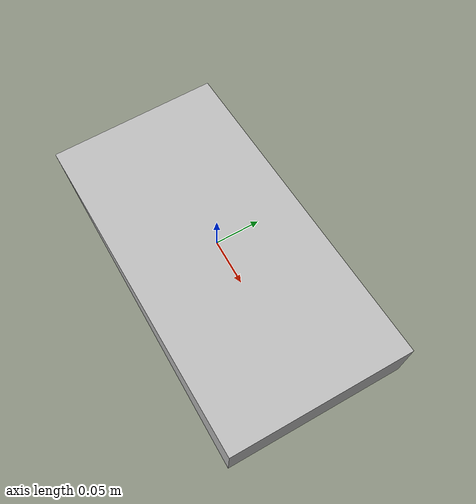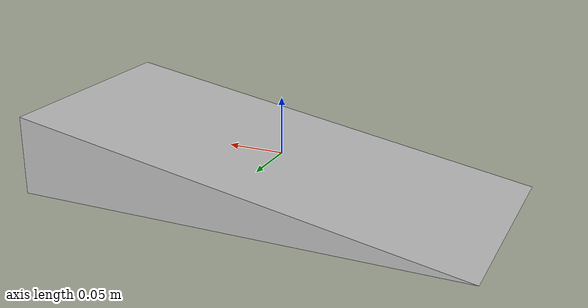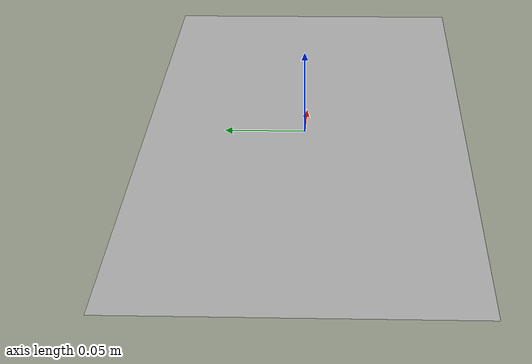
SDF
<?xml version="1.0"?>
<sdf version="1.6">
  <model name="Eurobot Ramp Yellow Model">
    <static>true</static>
    <link name="ramp_yellow">
      <collision name="ramp_yellow_collision">
        <geometry>
          <mesh>
            <uri>model://eurobot_25/ramp_yellow/meshes/eurobot_2025_ramp_yellow.dae</uri>
            <scale>1.0 1.0 1.0</scale>
          </mesh>
        </geometry>
      </collision>
      <visual name="ramp_yellow_visual">
        <geometry>
          <mesh>
            <uri>model://eurobot_25/ramp_yellow/meshes/eurobot_2025_ramp_yellow.dae</uri>
            <scale>1.0 1.0 1.0</scale>
          </mesh>
        </geometry>
      </visual>
    </link>

  </model>
</sdf>
